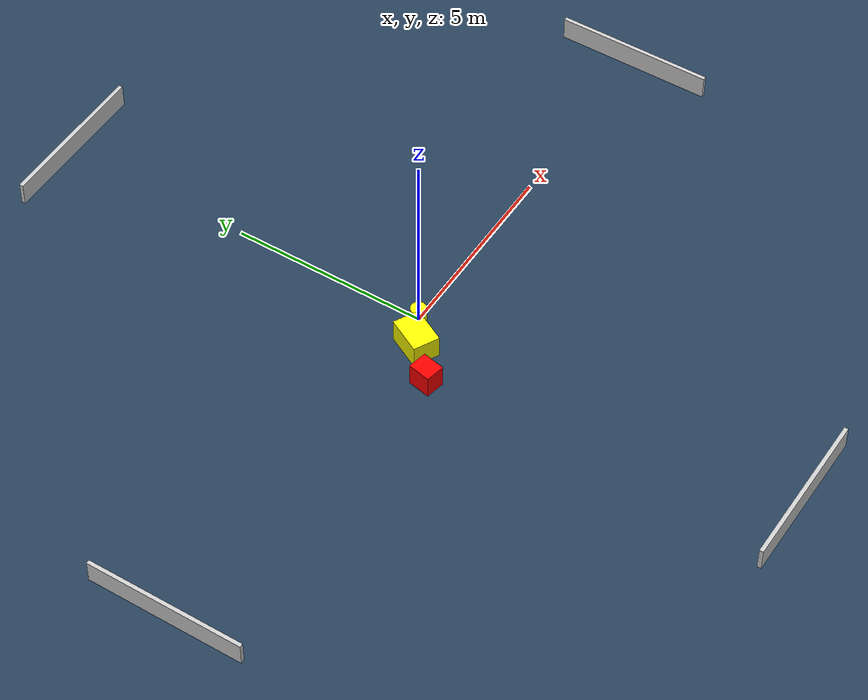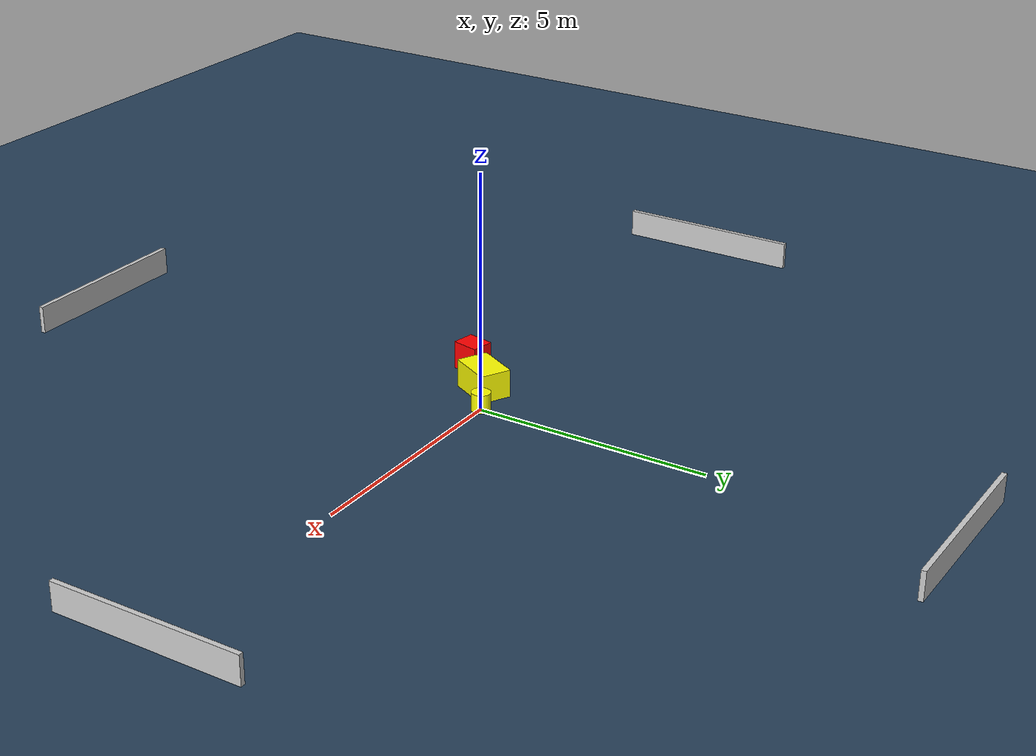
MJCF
<?xml version="1.0" ?>
<mujoco model="generated_environment">
  <option timestep="0.01" integrator="RK4" cone="elliptic"/>
  <default>
    <geom density="1"/>
  </default>
  <asset>
    <texture builtin="gradient" height="3072" name="skybox" rgb1="0.3 0.5 0.7" rgb2="0 0 0" type="skybox" width="512"/>
    <texture builtin="checker" height="300" name="groundplane" rgb1="0.2 0.3 0.4" rgb2="0.1 0.2 0.3" type="2d" width="300"/>
    <material name="groundplane" reflectance="0.2" texrepeat="5 5" texture="groundplane"/>
  </asset>
  <worldbody>
    <light dir="0 0 -1" directional="true" pos="0 0 1.5"/>
    <geom condim="3" friction="0.5 0.005 0.001" material="groundplane" name="floor" pos="0 0 0" size="0 0 0.05" type="plane"/>
    <body name="walls">
      <geom name="wall_1" condim="4" pos="-10.0 0.0 0.3" rgba="0.800000011920929 0.800000011920929 0.800000011920929 1.0" size="0.05 2.0 0.3" type="box"/>
      <geom name="wall_2" condim="4" pos="10.0 0.0 0.3" rgba="0.800000011920929 0.800000011920929 0.800000011920929 1.0" size="0.05 2.0 0.3" type="box"/>
      <geom name="wall_3" condim="4" pos="0.0 -10.0 0.3" rgba="0.800000011920929 0.800000011920929 0.800000011920929 1.0" size="2.0 0.05 0.3" type="box"/>
      <geom name="wall_4" condim="4" pos="0.0 10.0 0.3" rgba="0.800000011920929 0.800000011920929 0.800000011920929 1.0" size="2.0 0.05 0.3" type="box"/>
    </body>
    <body name="robot">
      <joint name="joint_x" type="slide" pos="0 0 0" axis="1 0 0"/>
      <joint name="joint_y" type="slide" pos="0 0 0" axis="0 1 0"/>
      <geom name="robot" type="cylinder" pos="0.0 0.0 0.2" size="0.2 0.2 0.0" mass="5.0" friction="1.0 0.005 0.0001" condim="4" rgba="1.0 1.0 0.0 1.0"/>
    </body>
    <body name="obstacle_1_movable">
      <geom name="obstacle_1_movable" condim="4" pos="-0.7342339737798991 -0.40194062422682836 0.3" euler="0 0 332.5107455393513" friction="0.0 0.005 0.001" rgba="1.0 1.0 0.0 1.0" size="0.33994759458845203 0.4797141239576821 0.3" type="box" mass="0.1"/>
      <joint type="free"/>
    </body>
    <body name="obstacle_2_static">
      <geom name="obstacle_2_static" condim="4" pos="-1.5314989267699322 -1.1809410107865783 0.3" euler="0 0 78.48751078246548" friction="0.0 0.005 0.001" rgba="1.0 0.0 0.0 1.0" size="0.28888832664726777 0.24485349349125515 0.3" type="box"/>
    </body>
  </worldbody>
  <actuator>
    <motor name="actuator_x" joint="joint_x" gear="1" ctrlrange="-1 1"/>
    <motor name="actuator_y" joint="joint_y" gear="1" ctrlrange="-1 1"/>
  </actuator>
</mujoco>
